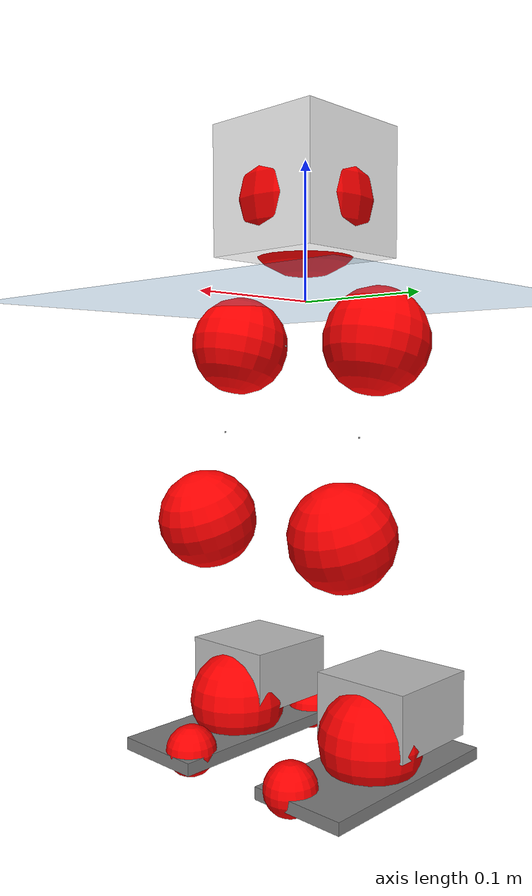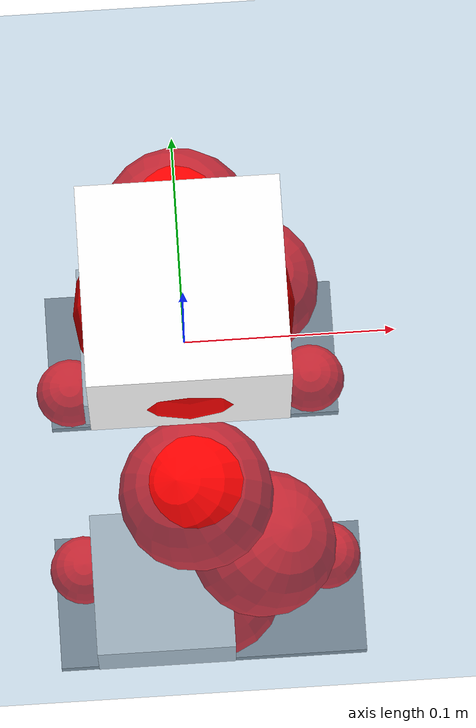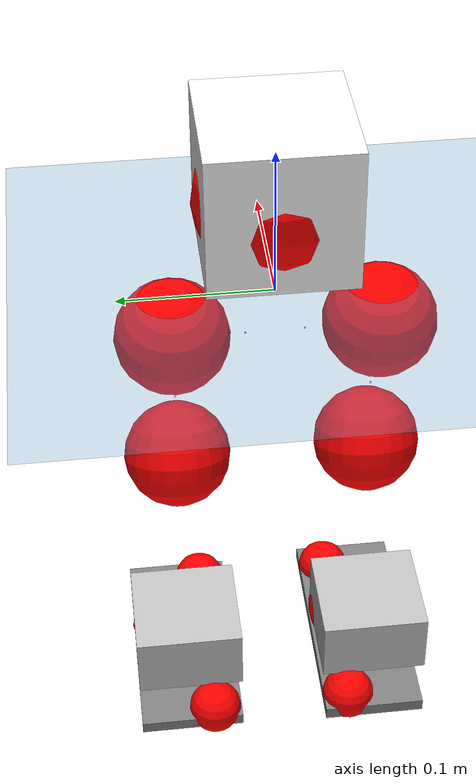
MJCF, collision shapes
<mujoco model="pi_12dof_release_v1">
  <compiler angle="radian" assetdir="assets" balanceinertia="true" inertiafromgeom="false"/>

  <option timestep="0.005" density="1.2" viscosity="2e-05"/>

  <size nkey="1"/>

  <visual>
    <quality shadowsize="8192"/>
    <map shadowclip="0.5"/>
  </visual>

  <default>
    <default class="/">
      <joint armature="0.01" damping="0.01" frictionloss="0.01"/>
      <geom contype="0" conaffinity="0" group="1" solref="-1000 -80"/>
      <site size="0.01 0.005 0.005" group="5"/>
      <general forcelimited="true" biastype="affine" gainprm="20" biasprm="0 -20 -0.5"/>
      <default class="foot">
        <geom size="0.0845 0.036 0.005" type="box" condim="6" group="4" priority="1" friction="0.9 0.2 0.2" solimp="0.015 1 0.005"/>
      </default>
      <default class="reward_collision_sphere">
        <geom group="5" rgba="1 0 0 1"/>
      </default>
    </default>
  </default>

  <asset>
    <texture type="skybox" colorspace="auto" name="//unnamed_texture_0" builtin="gradient" rgb1="0.95 0.95 0.95" rgb2="0.95 0.95 0.95" width="100" height="600"/>
    <texture type="2d" colorspace="auto" name="texplane" builtin="checker" rgb1="0.345 0.575 0.748" rgb2="0.345 0.575 0.748" markrgb="1 1 1" width="512" height="512"/>
    <material name="MatPlane" class="/" texture="texplane" texuniform="true" texrepeat="2 2" specular="0.9"/>
    <mesh name="baselink_1" class="/" file="baselink_1.STL"/>
    <mesh name="r_hip_pitch_link" class="/" file="r_hip_pitch_link.STL"/>
    <mesh name="r_hip_roll_link" class="/" file="r_hip_roll_link.STL"/>
    <mesh name="r_thigh_link" class="/" file="r_thigh_link.STL"/>
    <mesh name="r_calf_link" class="/" file="r_calf_link.STL"/>
    <mesh name="r_ankle_pitch_link" class="/" file="r_ankle_pitch_link.STL"/>
    <mesh name="r_ankle_roll_link" class="/" file="r_ankle_roll_link.STL"/>
    <mesh name="l_hip_pitch_link" class="/" file="l_hip_pitch_link.STL"/>
    <mesh name="l_hip_roll_link" class="/" file="l_hip_roll_link.STL"/>
    <mesh name="l_thigh_link" class="/" file="l_thigh_link.STL"/>
    <mesh name="l_calf_link" class="/" file="l_calf_link.STL"/>
    <mesh name="l_ankle_pitch_link" class="/" file="l_ankle_pitch_link.STL"/>
    <mesh name="l_ankle_roll_link" class="/" file="l_ankle_roll_link.STL"/>
  </asset>

  <worldbody>
    <geom name="floor" class="/" size="100 100 0.125" type="plane" group="0" material="MatPlane"/>
    <light name="toplight_shadow" class="/" pos="0 0 5" dir="0.0990148 0.0990148 -0.990148" type="directional" ambient="0.04 0.04 0.04" diffuse="0.55 0.55 0.55" specular="0.12 0.12 0.12"/>
    <light name="toplight_fill" class="/" pos="0 0 5" dir="0.0990148 0.0990148 -0.990148" type="directional" castshadow="false" ambient="0.04 0.04 0.04" diffuse="0.3 0.3 0.3" specular="0.08 0.08 0.08"/>
    <body name="trunk" pos="0.000263677 0.000152022 0.000383031" quat="1 -9.05374e-05 0.000194732 -4.7278e-05">
      <inertial pos="0.00209836 -0.00174838 0.0380697" quat="0.695697 0.00647551 0.0101132 0.718235" mass="1.72802" diaginertia="0.00801756 0.00440092 0.00355881"/>
      <joint name="//unnamed_joint_0" type="free"/>
      <geom name="//unnamed_geom_1" class="/" type="mesh" density="0" rgba="1 1 1 1" mesh="baselink_1"/>
      <geom name="//unnamed_geom_2" class="/" size="0.0465749 0.0465749 0.0465749" pos="0 0 0.0774535" type="box" rgba="1 1 1 1"/>
      <geom name="//unnamed_geom_3" class="reward_collision_sphere" size="0.0512324" pos="0 0 0.0677718"/>
      <site name="imu" class="/" pos="-0.00799733 -0.00263394 0.00380759" size="0.00931498"/>
      <camera name="track" class="/" pos="0 -1.72971 0" quat="0.707107 0.707107 0 0" mode="trackcom"/>
      <camera name="ego_camera" class="/" pos="0.0721103 0 0.17427" quat="-0.5 -0.5 0.5 0.5"/>
      <body name="r_hip_pitch_link" pos="3.47119e-05 -0.0193415 -0.0317912" quat="0.992169 0.000143218 -0.124904 0.000137583">
        <inertial pos="0.00196387 -0.0475547 0.000218531" quat="-0.017892 0.708226 -0.0261657 0.705273" mass="0.296445" diaginertia="8.82292e-05 4.76195e-05 7.04369e-05"/>
        <joint name="r_hip_pitch_joint" class="/" pos="0 0 0" axis="0.00364188 -0.999993 0.00111995" stiffness="0.00350271" range="-1.74987 1.22597" armature="0.0096834" damping="0.00126047" frictionloss="0.00962713"/>
        <geom name="//unnamed_geom_4" class="/" type="mesh" density="0" rgba="0.75294 0.75294 0.75294 1" mesh="r_hip_pitch_link"/>
        <geom name="//unnamed_geom_5" class="/" size="0.000465749 0.000465749 0.000465749" type="box" rgba="0.75294 0.75294 0.75294 1"/>
        <body name="r_hip_roll_link" pos="0.00123745 -0.0484734 0.00119742" quat="1 -5.55807e-05 -2.57782e-05 4.65745e-05">
          <inertial pos="-0.00219358 -0.000194207 -0.0588462" quat="0.705918 -0.0792062 -0.0837473 0.69885" mass="0.311057" diaginertia="0.000271085 0.000134558 0.000108623"/>
          <joint name="r_hip_roll_joint" class="/" pos="0 0 0" axis="-0.99997 -0.00624086 0.00451907" range="-0.138005 0.484528" armature="0.00977599" damping="0.00716658" frictionloss="0.00923652"/>
          <geom name="//unnamed_geom_6" class="/" type="mesh" density="0" rgba="0.75294 0.75294 0.75294 1" mesh="r_hip_roll_link"/>
          <geom name="//unnamed_geom_7" class="/" size="0.000465749 0.000465749 0.000465749" type="box" rgba="0.75294 0.75294 0.75294 1"/>
          <geom name="//unnamed_geom_8" class="reward_collision_sphere" size="0.0372599"/>
          <body name="r_thigh_link" pos="-0.000361376 0.000480286 -0.068067" quat="1 -0.000218823 1.58052e-05 -7.82023e-05">
            <inertial pos="0.000141392 0.000898112 -0.0459648" quat="0.736956 0.675941 -0.000141832 -3.74508e-05" mass="0.092466" diaginertia="0.000103801 4.57589e-05 4.97088e-05"/>
            <joint name="r_thigh_joint" class="/" pos="0 0 0" axis="-0.000510265 -0.0001061 -1" range="-0.316052 0.586918" armature="0.00935826" damping="0.003848" frictionloss="0.00954652"/>
            <geom name="//unnamed_geom_9" class="/" type="mesh" density="0" rgba="0.75294 0.75294 0.75294 1" mesh="r_thigh_link"/>
            <geom name="//unnamed_geom_10" class="/" size="0.000465749 0.000465749 0.000465749" type="box" rgba="0.75294 0.75294 0.75294 1"/>
            <body name="r_calf_link" pos="-0.000228442 -0.00202848 -0.0674351" quat="0.947641 0.000161125 0.319338 2.95302e-05">
              <inertial pos="0.00026901 -0.000627135 -0.0677494" quat="0.999985 -0.00316206 0.000293237 0.00445958" mass="0.652251" diaginertia="0.00290207 0.00166043 0.00014727"/>
              <joint name="r_calf_joint" class="/" pos="0 0 0" axis="0.00239038 -0.999992 -0.00333769" range="-1.65484 0.629601" armature="0.00955526" damping="0.00509539" frictionloss="0.00976798"/>
              <geom name="//unnamed_geom_11" class="/" type="mesh" density="0" rgba="0.75294 0.75294 0.75294 1" mesh="r_calf_link"/>
              <geom name="//unnamed_geom_12" class="/" size="0.000465749 0.000465749 0.000465749" type="box" rgba="0.75294 0.75294 0.75294 1"/>
              <geom name="//unnamed_geom_13" class="reward_collision_sphere" size="0.0372599"/>
              <body name="r_ankle_pitch_link" pos="0.000744068 0.00253291 -0.135061" quat="0.980066 1.01887e-06 -0.198672 -4.71576e-06">
                <inertial pos="0.00474499 0.00359896 -0.000606582" quat="0.00117577 0.708937 -0.00088817 0.70527" mass="0.140044" diaginertia="0.000253751 0.000106447 0.000100678"/>
                <joint name="r_ankle_pitch_joint" class="/" pos="0 0 0" axis="0.00289429 -0.999995 -0.00142691" range="-1.2967 0.507453" armature="0.00915515" damping="0.000552222" frictionloss="0.00927184"/>
                <geom name="//unnamed_geom_14" class="/" type="mesh" density="0" rgba="0.75294 0.75294 0.75294 1" mesh="r_ankle_pitch_link"/>
                <geom name="//unnamed_geom_15" class="/" size="0.0363284 0.0372599 0.0232875" type="box" rgba="0.75294 0.75294 0.75294 1"/>
                <body name="r_ankle_roll_link" pos="0.0742149 0.00221211 -0.000527713" quat="1 7.9841e-05 3.39253e-06 4.88358e-05">
                  <inertial pos="-0.0232918 0.000359949 -0.0131018" quat="0.55941 0.433114 0.430992 0.560106" mass="0.41692" diaginertia="0.000913335 0.000498174 0.000240776"/>
                  <joint name="r_ankle_roll_joint" class="/" pos="0 0 0" axis="-0.999999 0.00111073 -1.65834e-05" range="-0.142251 0.132465" armature="0.00887307" damping="0" frictionloss="0.0095938"/>
                  <geom name="//unnamed_geom_16" class="/" type="mesh" density="0" rgba="0.75294 0.75294 0.75294 1" mesh="r_ankle_roll_link"/>
                  <geom name="//unnamed_geom_17" class="/" type="mesh" rgba="0.75294 0.75294 0.75294 1" mesh="r_ankle_roll_link"/>
                  <geom name="right_foot" class="foot" size="0.0818734 0.0352542 0.00464138" pos="-0.049035 0 -0.0425994"/>
                  <geom name="//unnamed_geom_19" class="reward_collision_sphere" size="0.0372599" pos="-0.0480735 0 -0.0193634"/>
                  <geom name="//unnamed_geom_20" class="reward_collision_sphere" size="0.01863" pos="0.0144221 0.0172971 -0.0387268"/>
                  <geom name="//unnamed_geom_21" class="reward_collision_sphere" size="0.01863" pos="-0.115376 0.0172971 -0.0387268"/>
                  <site name="right_foot" class="foot" pos="-0.049035 0 -0.0425994" size="0.00931498"/>
                </body>
              </body>
            </body>
          </body>
        </body>
      </body>
      <body name="l_hip_pitch_link" pos="-0.00117554 0.0190022 -0.0314181" quat="0.992197 5.02709e-05 -0.124679 -3.60735e-05">
        <inertial pos="-0.000183803 0.047271 -0.000418601" quat="-0.0408021 0.705092 0.0324856 0.707195" mass="0.3125" diaginertia="0.000105619 5.14242e-05 8.43001e-05"/>
        <joint name="l_hip_pitch_joint" class="/" pos="0 0 0" axis="-0.00222593 0.999994 0.00279203" stiffness="0.00167929" range="-1.2632 1.75849" armature="0.00992855" damping="0.00221983" frictionloss="0.00911892"/>
        <geom name="//unnamed_geom_22" class="/" type="mesh" density="0" rgba="0.75294 0.75294 0.75294 1" mesh="l_hip_pitch_link"/>
        <geom name="//unnamed_geom_23" class="/" size="0.000465749 0.000465749 0.000465749" type="box" rgba="0.75294 0.75294 0.75294 1"/>
        <body name="l_hip_roll_link" pos="0.00133335 0.0466235 -6.89743e-05" quat="1 -4.10986e-05 -2.03705e-06 6.44068e-06">
          <inertial pos="-0.00146519 0.000168329 -0.0597012" quat="0.699611 -0.0751127 -0.0773777 0.706339" mass="0.314388" diaginertia="0.000273476 0.000135626 0.000108786"/>
          <joint name="l_hip_roll_joint" class="/" pos="0 0 0" axis="-0.999961 0.00636643 0.00606924" stiffness="0.00124317" range="-0.469634 0.102077" armature="0.00952409" damping="0.0108307" frictionloss="0.00896019"/>
          <geom name="//unnamed_geom_24" class="/" type="mesh" density="0" rgba="0.75294 0.75294 0.75294 1" mesh="l_hip_roll_link"/>
          <geom name="//unnamed_geom_25" class="/" size="0.000465749 0.000465749 0.000465749" type="box" rgba="0.75294 0.75294 0.75294 1"/>
          <geom name="//unnamed_geom_26" class="reward_collision_sphere" size="0.0372599"/>
          <body name="l_thigh_link" pos="0.000991957 -0.000737995 -0.0669007" quat="1 0.00032419 0.00026009 -0.000149622">
            <inertial pos="0.000375049 -0.00145215 -0.0462326" quat="0.676483 0.736401 0.00895391 0.00186114" mass="0.0912766" diaginertia="0.000102949 4.6211e-05 4.83971e-05"/>
            <joint name="l_thigh_joint" class="/" pos="0 0 0" axis="0.00331182 0.00359402 -0.999988" range="-0.586083 0.281655" armature="0.00882238" damping="0" frictionloss="0.00900494"/>
            <geom name="//unnamed_geom_27" class="/" type="mesh" density="0" rgba="0.75294 0.75294 0.75294 1" mesh="l_thigh_link"/>
            <geom name="//unnamed_geom_28" class="/" size="0.000465749 0.000465749 0.000465749" type="box" rgba="0.75294 0.75294 0.75294 1"/>
            <body name="l_calf_link" pos="-0.000721982 -0.000635678 -0.0679267" quat="0.947644 -5.05287e-06 0.319329 -8.71827e-05">
              <inertial pos="-0.000849831 0.00287359 -0.0677178" quat="0.999985 0.00386876 0.000163034 0.00399743" mass="0.66487" diaginertia="0.00293597 0.0017157 0.00014763"/>
              <joint name="l_calf_joint" class="/" pos="0 0 0" axis="0.00159941 0.999998 -0.000891826" stiffness="0.00301837" range="-0.664447 1.61553" armature="0.0090205" damping="0.0070783" frictionloss="0.00893404"/>
              <geom name="//unnamed_geom_29" class="/" type="mesh" density="0" rgba="0.75294 0.75294 0.75294 1" mesh="l_calf_link"/>
              <geom name="//unnamed_geom_30" class="/" size="0.000465749 0.000465749 0.000465749" type="box" rgba="0.75294 0.75294 0.75294 1"/>
              <geom name="//unnamed_geom_31" class="reward_collision_sphere" size="0.0372599"/>
              <body name="l_ankle_pitch_link" pos="0.00143417 0.00203089 -0.134501" quat="0.980054 3.07393e-05 -0.198733 -3.74355e-06">
                <inertial pos="0.00451202 -0.00071732 0.000354807" quat="-0.0023573 0.707219 0.00190871 0.706988" mass="0.136533" diaginertia="0.000245489 0.000104524 9.99046e-05"/>
                <joint name="l_ankle_pitch_joint" class="/" pos="0 0 0" axis="-0.000323961 1 -0.000205919" range="-0.503605 1.30145" armature="0.00935127" damping="0.00247664" frictionloss="0.010197"/>
                <geom name="//unnamed_geom_32" class="/" type="mesh" density="0" rgba="0.75294 0.75294 0.75294 1" mesh="l_ankle_pitch_link"/>
                <geom name="//unnamed_geom_33" class="/" size="0.0363284 0.0372599 0.0232875" type="box" rgba="0.75294 0.75294 0.75294 1"/>
                <body name="l_ankle_roll_link" pos="0.0716982 0.0010009 -0.000131035" quat="1 0.000274758 -0.000260877 0.000349787">
                  <inertial pos="-0.0225607 -0.000436096 -0.0143107" quat="0.55919 0.432684 0.4332 0.558954" mass="0.42241" diaginertia="0.000941609 0.000502115 0.000240471"/>
                  <joint name="l_ankle_roll_joint" class="/" pos="0 0 0" axis="-0.999999 -0.000679601 -0.00104801" range="-0.149898 0.152852" armature="0.00955746" damping="0.00941562" frictionloss="0.00866971"/>
                  <geom name="//unnamed_geom_34" class="/" type="mesh" density="0" rgba="0.75294 0.75294 0.75294 1" mesh="l_ankle_roll_link"/>
                  <geom name="//unnamed_geom_35" class="/" type="mesh" rgba="0.75294 0.75294 0.75294 1" mesh="l_ankle_roll_link"/>
                  <geom name="left_foot" class="foot" size="0.0776289 0.0362873 0.00438861" pos="-0.049035 0 -0.0425994"/>
                  <geom name="//unnamed_geom_37" class="reward_collision_sphere" size="0.0372599" pos="-0.0480735 0 -0.0193634"/>
                  <geom name="//unnamed_geom_38" class="reward_collision_sphere" size="0.01863" pos="0.0144221 -0.0172971 -0.0387268"/>
                  <geom name="//unnamed_geom_39" class="reward_collision_sphere" size="0.01863" pos="-0.115376 -0.0172971 -0.0387268"/>
                  <site name="left_foot" class="foot" pos="-0.049035 0 -0.0425994" size="0.00931498"/>
                </body>
              </body>
            </body>
          </body>
        </body>
      </body>
    </body>
  </worldbody>

  <contact>
    <pair class="/" geom1="floor" geom2="right_foot" name="//unnamed_contact_1"/>
    <pair class="/" geom1="floor" geom2="left_foot" name="//unnamed_contact_0"/>
  </contact>

  <actuator>
    <general name="r_hip_pitch_joint" class="/" joint="r_hip_pitch_joint" forcerange="-19.0552 19.0552" gainprm="18.4926" biasprm="0 -18.4926 -0.481276"/>
    <general name="r_hip_roll_joint" class="/" joint="r_hip_roll_joint" forcerange="-19.2744 19.2744" gainprm="18.4926" biasprm="0 -18.4926 -0.481276"/>
    <general name="r_thigh_joint" class="/" joint="r_thigh_joint" forcerange="-19.566 19.566" gainprm="18.4926" biasprm="0 -18.4926 -0.481276"/>
    <general name="r_calf_joint" class="/" joint="r_calf_joint" forcerange="-19.7594 19.7594" gainprm="18.4926" biasprm="0 -18.4926 -0.481276"/>
    <general name="r_ankle_pitch_joint" class="/" joint="r_ankle_pitch_joint" forcerange="-19.2723 19.2723" gainprm="18.4926" biasprm="0 -18.4926 -0.481276"/>
    <general name="r_ankle_roll_joint" class="/" joint="r_ankle_roll_joint" forcerange="-19.6547 19.6547" gainprm="18.4926" biasprm="0 -18.4926 -0.481276"/>
    <general name="l_hip_pitch_joint" class="/" joint="l_hip_pitch_joint" forcerange="-19.2205 19.2205" gainprm="18.4926" biasprm="0 -18.4926 -0.481276"/>
    <general name="l_hip_roll_joint" class="/" joint="l_hip_roll_joint" forcerange="-20.2047 20.2047" gainprm="18.4926" biasprm="0 -18.4926 -0.481276"/>
    <general name="l_thigh_joint" class="/" joint="l_thigh_joint" forcerange="-19.5748 19.5748" gainprm="18.4926" biasprm="0 -18.4926 -0.481276"/>
    <general name="l_calf_joint" class="/" joint="l_calf_joint" forcerange="-20.075 20.075" gainprm="18.4926" biasprm="0 -18.4926 -0.481276"/>
    <general name="l_ankle_pitch_joint" class="/" joint="l_ankle_pitch_joint" forcerange="-18.8416 18.8416" gainprm="18.4926" biasprm="0 -18.4926 -0.481276"/>
    <general name="l_ankle_roll_joint" class="/" joint="l_ankle_roll_joint" forcerange="-19.036 19.036" gainprm="18.4926" biasprm="0 -18.4926 -0.481276"/>
  </actuator>

  <sensor>
    <gyro site="imu" name="imu_angular_velocity"/>
    <velocimeter site="imu" name="imu_linear_velocity"/>
    <framelinvel objtype="site" objname="left_foot" name="left_foot_global_linear_velocity"/>
    <framelinvel objtype="site" objname="right_foot" name="right_foot_global_linear_velocity"/>
  </sensor>

  <keyframe>
    <key name="home" qpos="0 0 0.291 1 0 0 0 0.4 0 0 -0.8 0.4 0 -0.4 0 0 0.8 -0.4 0"/>
  </keyframe>
</mujoco>
